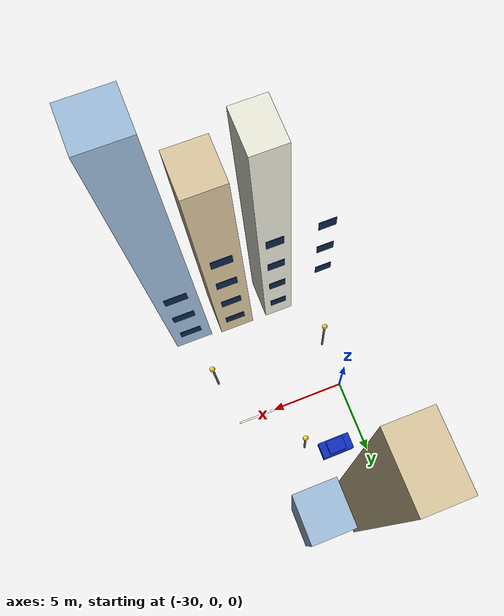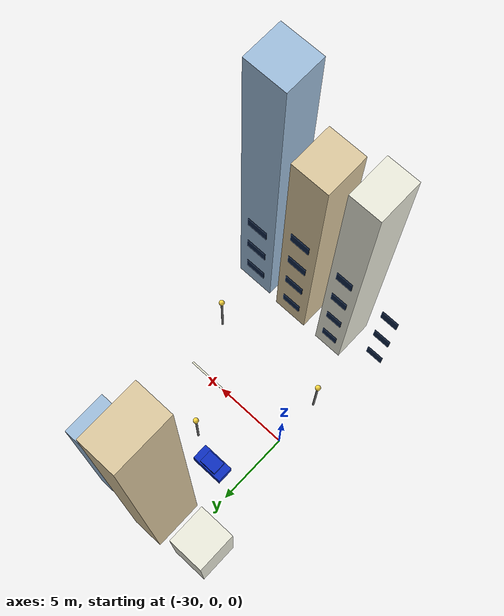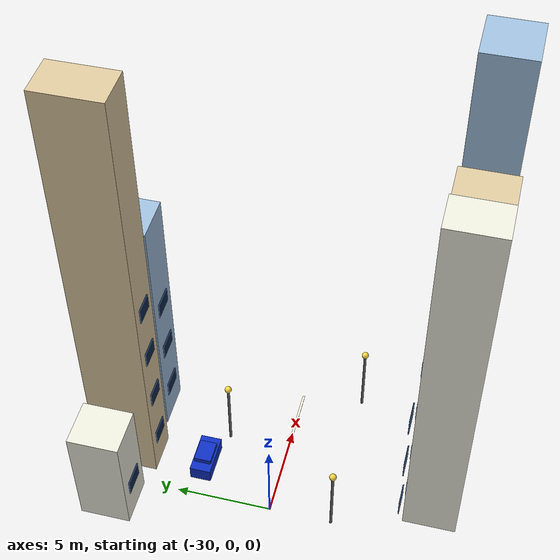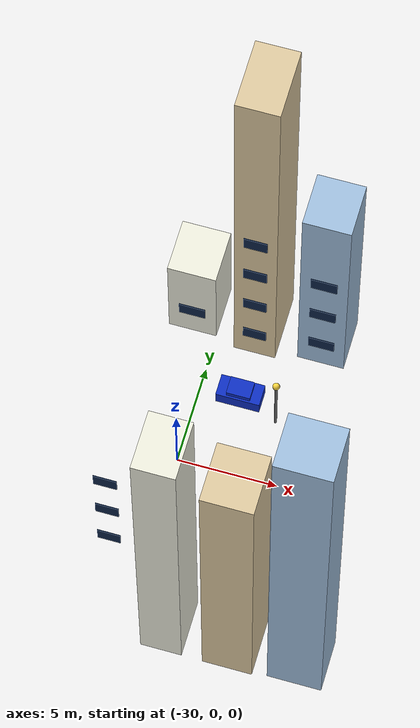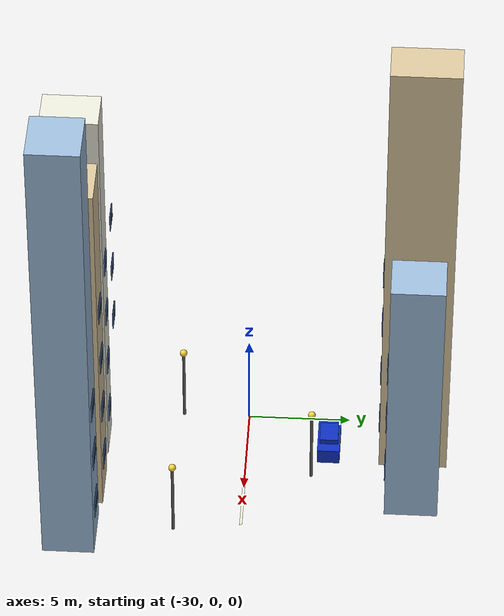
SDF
<sdf version="1.7">
 <world name="urban_street">
  <model name="white_lane_marking_02">
   <static>true</static>
   <pose>-24 0 0.055 0 0 0.0</pose>
   <link name="link">
    <collision name="collision"><geometry><box><size>3.2 0.12 0.02</size></box></geometry></collision>
    <visual name="visual">
     <geometry><box><size>3.2 0.12 0.02</size></box></geometry>
     <material>
      <ambient>0.95 0.95 0.85 1</ambient>
      <diffuse>0.95 0.95 0.85 1</diffuse>
      <specular>0.1 0.1 0.1 1</specular>
     </material>
    </visual>
   </link>
  </model>
  <model name="building_facade_04_window_1">
   <static>true</static>
   <pose>-31.25 -6.78 5.4 0 0 0.0</pose>
   <link name="link">
    <collision name="collision"><geometry><box><size>1.11 0.05 0.85</size></box></geometry></collision>
    <visual name="visual">
     <geometry><box><size>1.11 0.05 0.85</size></box></geometry>
     <material>
      <ambient>0.05 0.14 0.28 1</ambient>
      <diffuse>0.05 0.14 0.28 1</diffuse>
      <specular>0.1 0.1 0.1 1</specular>
     </material>
    </visual>
   </link>
  </model>
  <model name="building_facade_04_window_2">
   <static>true</static>
   <pose>-31.25 -6.78 8.6 0 0 0.0</pose>
   <link name="link">
    <collision name="collision"><geometry><box><size>1.11 0.05 0.85</size></box></geometry></collision>
    <visual name="visual">
     <geometry><box><size>1.11 0.05 0.85</size></box></geometry>
     <material>
      <ambient>0.05 0.14 0.28 1</ambient>
      <diffuse>0.05 0.14 0.28 1</diffuse>
      <specular>0.1 0.1 0.1 1</specular>
     </material>
    </visual>
   </link>
  </model>
  <model name="building_facade_04_window_3">
   <static>true</static>
   <pose>-31.25 -6.78 11.8 0 0 0.0</pose>
   <link name="link">
    <collision name="collision"><geometry><box><size>1.11 0.05 0.85</size></box></geometry></collision>
    <visual name="visual">
     <geometry><box><size>1.11 0.05 0.85</size></box></geometry>
     <material>
      <ambient>0.05 0.14 0.28 1</ambient>
      <diffuse>0.05 0.14 0.28 1</diffuse>
      <specular>0.1 0.1 0.1 1</specular>
     </material>
    </visual>
   </link>
  </model>
  <model name="building_facade_05">
   <static>true</static>
   <pose>-28.0 -8.2 10.62 0 0 0.0</pose>
   <link name="link">
    <collision name="collision"><geometry><box><size>2.02 2.76 21.25</size></box></geometry></collision>
    <visual name="visual">
     <geometry><box><size>2.02 2.76 21.25</size></box></geometry>
     <material>
      <ambient>0.92 0.92 0.86 1</ambient>
      <diffuse>0.92 0.92 0.86 1</diffuse>
      <specular>0.1 0.1 0.1 1</specular>
     </material>
    </visual>
   </link>
  </model>
  <model name="building_facade_05_window_0">
   <static>true</static>
   <pose>-28.0 -6.79 2.2 0 0 0.0</pose>
   <link name="link">
    <collision name="collision"><geometry><box><size>1.11 0.05 0.85</size></box></geometry></collision>
    <visual name="visual">
     <geometry><box><size>1.11 0.05 0.85</size></box></geometry>
     <material>
      <ambient>0.05 0.14 0.28 1</ambient>
      <diffuse>0.05 0.14 0.28 1</diffuse>
      <specular>0.1 0.1 0.1 1</specular>
     </material>
    </visual>
   </link>
  </model>
  <model name="building_facade_05_window_1">
   <static>true</static>
   <pose>-28.0 -6.79 5.4 0 0 0.0</pose>
   <link name="link">
    <collision name="collision"><geometry><box><size>1.11 0.05 0.85</size></box></geometry></collision>
    <visual name="visual">
     <geometry><box><size>1.11 0.05 0.85</size></box></geometry>
     <material>
      <ambient>0.05 0.14 0.28 1</ambient>
      <diffuse>0.05 0.14 0.28 1</diffuse>
      <specular>0.1 0.1 0.1 1</specular>
     </material>
    </visual>
   </link>
  </model>
  <model name="building_facade_05_window_2">
   <static>true</static>
   <pose>-28.0 -6.79 8.6 0 0 0.0</pose>
   <link name="link">
    <collision name="collision"><geometry><box><size>1.11 0.05 0.85</size></box></geometry></collision>
    <visual name="visual">
     <geometry><box><size>1.11 0.05 0.85</size></box></geometry>
     <material>
      <ambient>0.05 0.14 0.28 1</ambient>
      <diffuse>0.05 0.14 0.28 1</diffuse>
      <specular>0.1 0.1 0.1 1</specular>
     </material>
    </visual>
   </link>
  </model>
  <model name="building_facade_05_window_3">
   <static>true</static>
   <pose>-28.0 -6.79 11.8 0 0 0.0</pose>
   <link name="link">
    <collision name="collision"><geometry><box><size>1.11 0.05 0.85</size></box></geometry></collision>
    <visual name="visual">
     <geometry><box><size>1.11 0.05 0.85</size></box></geometry>
     <material>
      <ambient>0.05 0.14 0.28 1</ambient>
      <diffuse>0.05 0.14 0.28 1</diffuse>
      <specular>0.1 0.1 0.1 1</specular>
     </material>
    </visual>
   </link>
  </model>
  <model name="building_facade_06">
   <static>true</static>
   <pose>-24.75 -8.2 9.87 0 0 0.0</pose>
   <link name="link">
    <collision name="collision"><geometry><box><size>2.44 2.79 19.73</size></box></geometry></collision>
    <visual name="visual">
     <geometry><box><size>2.44 2.79 19.73</size></box></geometry>
     <material>
      <ambient>0.86 0.78 0.62 1</ambient>
      <diffuse>0.86 0.78 0.62 1</diffuse>
      <specular>0.1 0.1 0.1 1</specular>
     </material>
    </visual>
   </link>
  </model>
  <model name="building_facade_06_window_0">
   <static>true</static>
   <pose>-24.75 -6.78 2.2 0 0 0.0</pose>
   <link name="link">
    <collision name="collision"><geometry><box><size>1.34 0.05 0.85</size></box></geometry></collision>
    <visual name="visual">
     <geometry><box><size>1.34 0.05 0.85</size></box></geometry>
     <material>
      <ambient>0.05 0.14 0.28 1</ambient>
      <diffuse>0.05 0.14 0.28 1</diffuse>
      <specular>0.1 0.1 0.1 1</specular>
     </material>
    </visual>
   </link>
  </model>
  <model name="building_facade_06_window_1">
   <static>true</static>
   <pose>-24.75 -6.78 5.4 0 0 0.0</pose>
   <link name="link">
    <collision name="collision"><geometry><box><size>1.34 0.05 0.85</size></box></geometry></collision>
    <visual name="visual">
     <geometry><box><size>1.34 0.05 0.85</size></box></geometry>
     <material>
      <ambient>0.05 0.14 0.28 1</ambient>
      <diffuse>0.05 0.14 0.28 1</diffuse>
      <specular>0.1 0.1 0.1 1</specular>
     </material>
    </visual>
   </link>
  </model>
  <model name="building_facade_06_window_2">
   <static>true</static>
   <pose>-24.75 -6.78 8.6 0 0 0.0</pose>
   <link name="link">
    <collision name="collision"><geometry><box><size>1.34 0.05 0.85</size></box></geometry></collision>
    <visual name="visual">
     <geometry><box><size>1.34 0.05 0.85</size></box></geometry>
     <material>
      <ambient>0.05 0.14 0.28 1</ambient>
      <diffuse>0.05 0.14 0.28 1</diffuse>
      <specular>0.1 0.1 0.1 1</specular>
     </material>
    </visual>
   </link>
  </model>
  <model name="building_facade_06_window_3">
   <static>true</static>
   <pose>-24.75 -6.78 11.8 0 0 0.0</pose>
   <link name="link">
    <collision name="collision"><geometry><box><size>1.34 0.05 0.85</size></box></geometry></collision>
    <visual name="visual">
     <geometry><box><size>1.34 0.05 0.85</size></box></geometry>
     <material>
      <ambient>0.05 0.14 0.28 1</ambient>
      <diffuse>0.05 0.14 0.28 1</diffuse>
      <specular>0.1 0.1 0.1 1</specular>
     </material>
    </visual>
   </link>
  </model>
  <model name="building_facade_07">
   <static>true</static>
   <pose>-21.5 -8.2 12.57 0 0 0.0</pose>
   <link name="link">
    <collision name="collision"><geometry><box><size>2.65 2.51 25.15</size></box></geometry></collision>
    <visual name="visual">
     <geometry><box><size>2.65 2.51 25.15</size></box></geometry>
     <material>
      <ambient>0.62 0.74 0.86 1</ambient>
      <diffuse>0.62 0.74 0.86 1</diffuse>
      <specular>0.1 0.1 0.1 1</specular>
     </material>
    </visual>
   </link>
  </model>
  <model name="building_facade_07_window_0">
   <static>true</static>
   <pose>-21.5 -6.92 2.2 0 0 0.0</pose>
   <link name="link">
    <collision name="collision"><geometry><box><size>1.46 0.05 0.85</size></box></geometry></collision>
    <visual name="visual">
     <geometry><box><size>1.46 0.05 0.85</size></box></geometry>
     <material>
      <ambient>0.05 0.14 0.28 1</ambient>
      <diffuse>0.05 0.14 0.28 1</diffuse>
      <specular>0.1 0.1 0.1 1</specular>
     </material>
    </visual>
   </link>
  </model>
  <model name="building_facade_07_window_1">
   <static>true</static>
   <pose>-21.5 -6.92 5.4 0 0 0.0</pose>
   <link name="link">
    <collision name="collision"><geometry><box><size>1.46 0.05 0.85</size></box></geometry></collision>
    <visual name="visual">
     <geometry><box><size>1.46 0.05 0.85</size></box></geometry>
     <material>
      <ambient>0.05 0.14 0.28 1</ambient>
      <diffuse>0.05 0.14 0.28 1</diffuse>
      <specular>0.1 0.1 0.1 1</specular>
     </material>
    </visual>
   </link>
  </model>
  <model name="building_facade_07_window_2">
   <static>true</static>
   <pose>-21.5 -6.92 8.6 0 0 0.0</pose>
   <link name="link">
    <collision name="collision"><geometry><box><size>1.46 0.05 0.85</size></box></geometry></collision>
    <visual name="visual">
     <geometry><box><size>1.46 0.05 0.85</size></box></geometry>
     <material>
      <ambient>0.05 0.14 0.28 1</ambient>
      <diffuse>0.05 0.14 0.28 1</diffuse>
      <specular>0.1 0.1 0.1 1</specular>
     </material>
    </visual>
   </link>
  </model>
  <model name="building_facade_30">
   <static>true</static>
   <pose>-31.25 8.2 3.09 0 0 0.0</pose>
   <link name="link">
    <collision name="collision"><geometry><box><size>2.41 2.62 6.18</size></box></geometry></collision>
    <visual name="visual">
     <geometry><box><size>2.41 2.62 6.18</size></box></geometry>
     <material>
      <ambient>0.92 0.92 0.86 1</ambient>
      <diffuse>0.92 0.92 0.86 1</diffuse>
      <specular>0.1 0.1 0.1 1</specular>
     </material>
    </visual>
   </link>
  </model>
  <model name="building_facade_30_window_0">
   <static>true</static>
   <pose>-31.25 6.86 2.2 0 0 0.0</pose>
   <link name="link">
    <collision name="collision"><geometry><box><size>1.32 0.05 0.85</size></box></geometry></collision>
    <visual name="visual">
     <geometry><box><size>1.32 0.05 0.85</size></box></geometry>
     <material>
      <ambient>0.05 0.14 0.28 1</ambient>
      <diffuse>0.05 0.14 0.28 1</diffuse>
      <specular>0.1 0.1 0.1 1</specular>
     </material>
    </visual>
   </link>
  </model>
  <model name="building_facade_31">
   <static>true</static>
   <pose>-28.0 8.2 12.4 0 0 0.0</pose>
   <link name="link">
    <collision name="collision"><geometry><box><size>2.09 3.32 24.8</size></box></geometry></collision>
    <visual name="visual">
     <geometry><box><size>2.09 3.32 24.8</size></box></geometry>
     <material>
      <ambient>0.86 0.78 0.62 1</ambient>
      <diffuse>0.86 0.78 0.62 1</diffuse>
      <specular>0.1 0.1 0.1 1</specular>
     </material>
    </visual>
   </link>
  </model>
  <model name="building_facade_31_window_0">
   <static>true</static>
   <pose>-28.0 6.51 2.2 0 0 0.0</pose>
   <link name="link">
    <collision name="collision"><geometry><box><size>1.15 0.05 0.85</size></box></geometry></collision>
    <visual name="visual">
     <geometry><box><size>1.15 0.05 0.85</size></box></geometry>
     <material>
      <ambient>0.05 0.14 0.28 1</ambient>
      <diffuse>0.05 0.14 0.28 1</diffuse>
      <specular>0.1 0.1 0.1 1</specular>
     </material>
    </visual>
   </link>
  </model>
  <model name="building_facade_31_window_1">
   <static>true</static>
   <pose>-28.0 6.51 5.4 0 0 0.0</pose>
   <link name="link">
    <collision name="collision"><geometry><box><size>1.15 0.05 0.85</size></box></geometry></collision>
    <visual name="visual">
     <geometry><box><size>1.15 0.05 0.85</size></box></geometry>
     <material>
      <ambient>0.05 0.14 0.28 1</ambient>
      <diffuse>0.05 0.14 0.28 1</diffuse>
      <specular>0.1 0.1 0.1 1</specular>
     </material>
    </visual>
   </link>
  </model>
  <model name="building_facade_31_window_2">
   <static>true</static>
   <pose>-28.0 6.51 8.6 0 0 0.0</pose>
   <link name="link">
    <collision name="collision"><geometry><box><size>1.15 0.05 0.85</size></box></geometry></collision>
    <visual name="visual">
     <geometry><box><size>1.15 0.05 0.85</size></box></geometry>
     <material>
      <ambient>0.05 0.14 0.28 1</ambient>
      <diffuse>0.05 0.14 0.28 1</diffuse>
      <specular>0.1 0.1 0.1 1</specular>
     </material>
    </visual>
   </link>
  </model>
  <model name="building_facade_31_window_3">
   <static>true</static>
   <pose>-28.0 6.51 11.8 0 0 0.0</pose>
   <link name="link">
    <collision name="collision"><geometry><box><size>1.15 0.05 0.85</size></box></geometry></collision>
    <visual name="visual">
     <geometry><box><size>1.15 0.05 0.85</size></box></geometry>
     <material>
      <ambient>0.05 0.14 0.28 1</ambient>
      <diffuse>0.05 0.14 0.28 1</diffuse>
      <specular>0.1 0.1 0.1 1</specular>
     </material>
    </visual>
   </link>
  </model>
  <model name="building_facade_32">
   <static>true</static>
   <pose>-24.75 8.2 7.27 0 0 0.0</pose>
   <link name="link">
    <collision name="collision"><geometry><box><size>2.34 2.58 14.54</size></box></geometry></collision>
    <visual name="visual">
     <geometry><box><size>2.34 2.58 14.54</size></box></geometry>
     <material>
      <ambient>0.62 0.74 0.86 1</ambient>
      <diffuse>0.62 0.74 0.86 1</diffuse>
      <specular>0.1 0.1 0.1 1</specular>
     </material>
    </visual>
   </link>
  </model>
  <model name="building_facade_32_window_0">
   <static>true</static>
   <pose>-24.75 6.88 2.2 0 0 0.0</pose>
   <link name="link">
    <collision name="collision"><geometry><box><size>1.29 0.05 0.85</size></box></geometry></collision>
    <visual name="visual">
     <geometry><box><size>1.29 0.05 0.85</size></box></geometry>
     <material>
      <ambient>0.05 0.14 0.28 1</ambient>
      <diffuse>0.05 0.14 0.28 1</diffuse>
      <specular>0.1 0.1 0.1 1</specular>
     </material>
    </visual>
   </link>
  </model>
  <model name="building_facade_32_window_1">
   <static>true</static>
   <pose>-24.75 6.88 5.4 0 0 0.0</pose>
   <link name="link">
    <collision name="collision"><geometry><box><size>1.29 0.05 0.85</size></box></geometry></collision>
    <visual name="visual">
     <geometry><box><size>1.29 0.05 0.85</size></box></geometry>
     <material>
      <ambient>0.05 0.14 0.28 1</ambient>
      <diffuse>0.05 0.14 0.28 1</diffuse>
      <specular>0.1 0.1 0.1 1</specular>
     </material>
    </visual>
   </link>
  </model>
  <model name="building_facade_32_window_2">
   <static>true</static>
   <pose>-24.75 6.88 8.6 0 0 0.0</pose>
   <link name="link">
    <collision name="collision"><geometry><box><size>1.29 0.05 0.85</size></box></geometry></collision>
    <visual name="visual">
     <geometry><box><size>1.29 0.05 0.85</size></box></geometry>
     <material>
      <ambient>0.05 0.14 0.28 1</ambient>
      <diffuse>0.05 0.14 0.28 1</diffuse>
      <specular>0.1 0.1 0.1 1</specular>
     </material>
    </visual>
   </link>
  </model>
  <model name="street_pole_02">
   <static>true</static>
   <pose>-30.0 -3.25 2.0 0 0 0</pose>
   <link name="link">
    <collision name="collision">
     <geometry><cylinder><radius>0.07</radius><length>4.0</length></cylinder></geometry>
    </collision>
    <visual name="visual">
     <geometry><cylinder><radius>0.07</radius><length>4.0</length></cylinder></geometry>
     <material>
      <ambient>0.35 0.35 0.35 1</ambient>
      <diffuse>0.35 0.35 0.35 1</diffuse>
      <specular>0.1 0.1 0.1 1</specular>
     </material>
    </visual>
   </link>
  </model>
  <model name="lamp_head_02">
   <static>true</static>
   <pose>-30.0 -3.25 4.15 0 0 0</pose>
   <link name="link">
    <visual name="visual">
     <geometry><sphere><radius>0.18</radius></sphere></geometry>
     <material>
      <ambient>1.0 0.85 0.25 1</ambient>
      <diffuse>1.0 0.85 0.25 1</diffuse>
      <specular>0.1 0.1 0.1 1</specular>
     </material>
    </visual>
   </link>
  </model>
  <model name="street_pole_03">
   <static>true</static>
   <pose>-26.0 3.25 2.0 0 0 0</pose>
   <link name="link">
    <collision name="collision">
     <geometry><cylinder><radius>0.07</radius><length>4.0</length></cylinder></geometry>
    </collision>
    <visual name="visual">
     <geometry><cylinder><radius>0.07</radius><length>4.0</length></cylinder></geometry>
     <material>
      <ambient>0.35 0.35 0.35 1</ambient>
      <diffuse>0.35 0.35 0.35 1</diffuse>
      <specular>0.1 0.1 0.1 1</specular>
     </material>
    </visual>
   </link>
  </model>
  <model name="lamp_head_03">
   <static>true</static>
   <pose>-26.0 3.25 4.15 0 0 0</pose>
   <link name="link">
    <visual name="visual">
     <geometry><sphere><radius>0.18</radius></sphere></geometry>
     <material>
      <ambient>1.0 0.85 0.25 1</ambient>
      <diffuse>1.0 0.85 0.25 1</diffuse>
      <specular>0.1 0.1 0.1 1</specular>
     </material>
    </visual>
   </link>
  </model>
  <model name="street_pole_04">
   <static>true</static>
   <pose>-22.0 -3.25 2.0 0 0 0</pose>
   <link name="link">
    <collision name="collision">
     <geometry><cylinder><radius>0.07</radius><length>4.0</length></cylinder></geometry>
    </collision>
    <visual name="visual">
     <geometry><cylinder><radius>0.07</radius><length>4.0</length></cylinder></geometry>
     <material>
      <ambient>0.35 0.35 0.35 1</ambient>
      <diffuse>0.35 0.35 0.35 1</diffuse>
      <specular>0.1 0.1 0.1 1</specular>
     </material>
    </visual>
   </link>
  </model>
  <model name="lamp_head_04">
   <static>true</static>
   <pose>-22.0 -3.25 4.15 0 0 0</pose>
   <link name="link">
    <visual name="visual">
     <geometry><sphere><radius>0.18</radius></sphere></geometry>
     <material>
      <ambient>1.0 0.85 0.25 1</ambient>
      <diffuse>1.0 0.85 0.25 1</diffuse>
      <specular>0.1 0.1 0.1 1</specular>
     </material>
    </visual>
   </link>
  </model>
  <model name="parked_vehicle_body_01">
   <static>true</static>
   <pose>-28 4.05 0.45 0 0 0.0</pose>
   <link name="link">
    <collision name="collision"><geometry><box><size>2.2 1.1 0.8</size></box></geometry></collision>
    <visual name="visual">
     <geometry><box><size>2.2 1.1 0.8</size></box></geometry>
     <material>
      <ambient>0.05 0.18 0.75 1</ambient>
      <diffuse>0.05 0.18 0.75 1</diffuse>
      <specular>0.1 0.1 0.1 1</specular>
     </material>
    </visual>
   </link>
  </model>
  <model name="parked_vehicle_roof_01">
   <static>true</static>
   <pose>-28 4.05 0.95 0 0 0.0</pose>
   <link name="link">
    <collision name="collision"><geometry><box><size>1.2 0.9 0.35</size></box></geometry></collision>
    <visual name="visual">
     <geometry><box><size>1.2 0.9 0.35</size></box></geometry>
     <material>
      <ambient>0.05 0.18 0.75 1</ambient>
      <diffuse>0.05 0.18 0.75 1</diffuse>
      <specular>0.1 0.1 0.1 1</specular>
     </material>
    </visual>
   </link>
  </model>
 </world>
</sdf>
